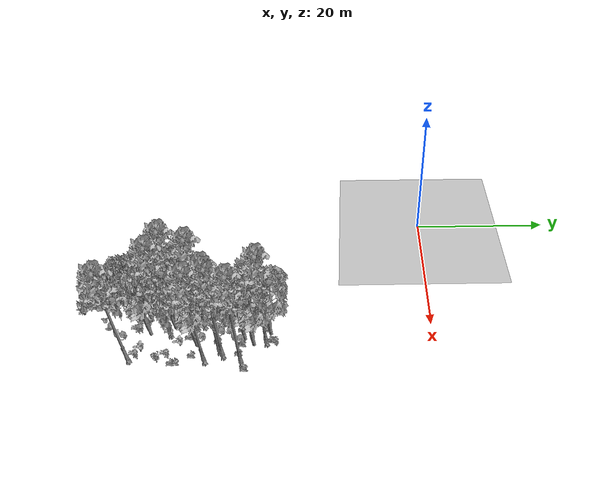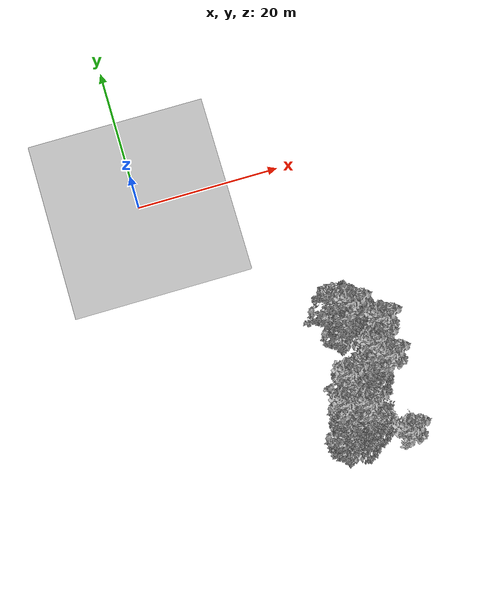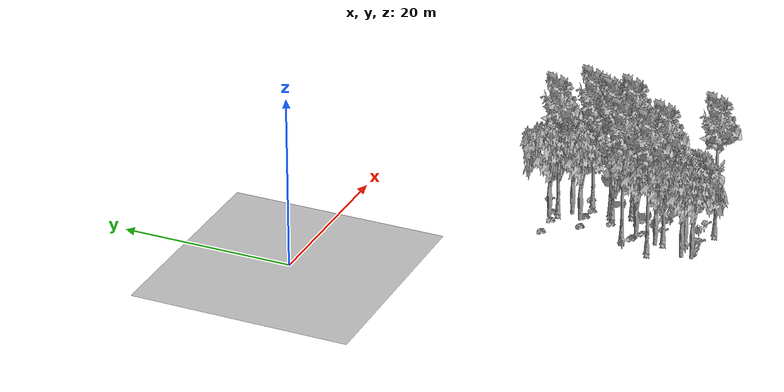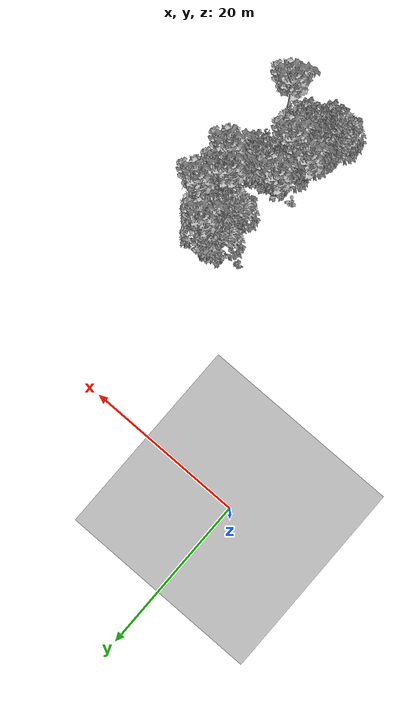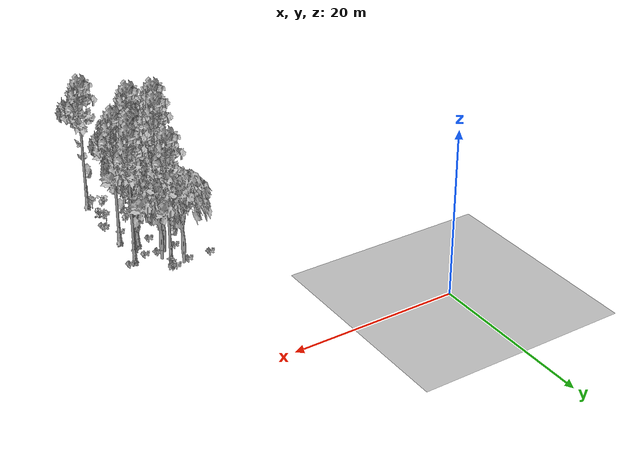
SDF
<sdf version="1.7">
 <world name="default">
  <model name="ground_plane">
   <static>1</static>
   <link name="link">
    <collision name="collision">
     <pose>-50 0 0 0 -0 0</pose>
     <geometry><plane><normal>0 0 1</normal><size>80 80</size></plane></geometry>
     <surface><contact><ode><min_depth>0.01</min_depth><max_vel>0</max_vel></ode></contact></surface>
    </collision>
    <visual name="grass">
     <cast_shadows>0</cast_shadows>
     <geometry>
      <mesh>
       <scale>0.46714285714285714 0.46714285714285714 0.1</scale>
       <uri>file://grass_plane/meshes/grass_plane.dae</uri>
      </mesh>
     </geometry>
    </visual>
   </link>
  </model>
  <model name="Tree 2">
   <static>1</static>
   <pose>25.895939131079473 -24.983478622586304 0 1.57079 -0 0</pose>
   <link name="link">
    <collision name="collision">
     <geometry><mesh><scale>3.5 5 3.5</scale><uri>model://tree_9/meshes/tree_9.obj</uri></mesh></geometry>
    </collision>
    <visual name="visual">
     <geometry><mesh><scale>3.5 5 3.5</scale><uri>model://tree_9/meshes/tree_9.obj</uri></mesh></geometry>
    </visual>
   </link>
  </model>
  <model name="Tree 17">
   <static>1</static>
   <pose>20.775173851776394 -32.00845553711174 0 1.57079 -0 0</pose>
   <link name="link">
    <collision name="collision">
     <geometry><mesh><scale>3.5 5 3.5</scale><uri>model://tree_2/meshes/tree_2.obj</uri></mesh></geometry>
    </collision>
    <visual name="visual">
     <geometry><mesh><scale>3.5 5 3.5</scale><uri>model://tree_2/meshes/tree_2.obj</uri></mesh></geometry>
    </visual>
   </link>
  </model>
  <model name="Tree 50">
   <static>1</static>
   <pose>20.03964299028147 -34.502203573731755 0 1.57079 -0 0</pose>
   <link name="link">
    <collision name="collision">
     <geometry><mesh><scale>3.5 5 3.5</scale><uri>model://tree_2/meshes/tree_2.obj</uri></mesh></geometry>
    </collision>
    <visual name="visual">
     <geometry><mesh><scale>3.5 5 3.5</scale><uri>model://tree_2/meshes/tree_2.obj</uri></mesh></geometry>
    </visual>
   </link>
  </model>
  <model name="Tree 171">
   <static>1</static>
   <pose>25.13889703880225 -39.59382594323795 0 1.57079 -0 0</pose>
   <link name="link">
    <collision name="collision">
     <geometry><mesh><scale>3.5 5 3.5</scale><uri>model://tree_9/meshes/tree_9.obj</uri></mesh></geometry>
    </collision>
    <visual name="visual">
     <geometry><mesh><scale>3.5 5 3.5</scale><uri>model://tree_9/meshes/tree_9.obj</uri></mesh></geometry>
    </visual>
   </link>
  </model>
  <model name="Tree 178">
   <static>1</static>
   <pose>18.662340691545758 -38.01272066539692 0 1.57079 -0 0</pose>
   <link name="link">
    <collision name="collision">
     <geometry><mesh><scale>3.5 5 3.5</scale><uri>model://tree_2/meshes/tree_2.obj</uri></mesh></geometry>
    </collision>
    <visual name="visual">
     <geometry><mesh><scale>3.5 5 3.5</scale><uri>model://tree_2/meshes/tree_2.obj</uri></mesh></geometry>
    </visual>
   </link>
  </model>
  <model name="Tree 180">
   <static>1</static>
   <pose>18.35312894545463 -34.17667152465096 0 1.57079 -0 0</pose>
   <link name="link">
    <collision name="collision">
     <geometry><mesh><scale>3.5 5 3.5</scale><uri>model://tree_9/meshes/tree_9.obj</uri></mesh></geometry>
    </collision>
    <visual name="visual">
     <geometry><mesh><scale>3.5 5 3.5</scale><uri>model://tree_9/meshes/tree_9.obj</uri></mesh></geometry>
    </visual>
   </link>
  </model>
  <model name="Tree 257">
   <static>1</static>
   <pose>18.790920092586134 -39.15629080911507 0 1.57079 -0 0</pose>
   <link name="link">
    <collision name="collision">
     <geometry><mesh><scale>3.5 5 3.5</scale><uri>model://tree_2/meshes/tree_2.obj</uri></mesh></geometry>
    </collision>
    <visual name="visual">
     <geometry><mesh><scale>3.5 5 3.5</scale><uri>model://tree_2/meshes/tree_2.obj</uri></mesh></geometry>
    </visual>
   </link>
  </model>
  <model name="Tree 292">
   <static>1</static>
   <pose>23.998572255017315 -28.04260436603011 0 1.57079 -0 0</pose>
   <link name="link">
    <collision name="collision">
     <geometry><mesh><scale>3.5 5 3.5</scale><uri>model://tree_9/meshes/tree_9.obj</uri></mesh></geometry>
    </collision>
    <visual name="visual">
     <geometry><mesh><scale>3.5 5 3.5</scale><uri>model://tree_9/meshes/tree_9.obj</uri></mesh></geometry>
    </visual>
   </link>
  </model>
  <model name="Tree 299">
   <static>1</static>
   <pose>22.74013191593503 -22.070173268263027 0 1.57079 -0 0</pose>
   <link name="link">
    <collision name="collision">
     <geometry><mesh><scale>3.5 5 3.5</scale><uri>model://tree_9/meshes/tree_9.obj</uri></mesh></geometry>
    </collision>
    <visual name="visual">
     <geometry><mesh><scale>3.5 5 3.5</scale><uri>model://tree_9/meshes/tree_9.obj</uri></mesh></geometry>
    </visual>
   </link>
  </model>
  <model name="Tree 339">
   <static>1</static>
   <pose>22.057036260310234 -24.949060111640335 0 1.57079 -0 0</pose>
   <link name="link">
    <collision name="collision">
     <geometry><mesh><scale>3.5 5 3.5</scale><uri>model://tree_2/meshes/tree_2.obj</uri></mesh></geometry>
    </collision>
    <visual name="visual">
     <geometry><mesh><scale>3.5 5 3.5</scale><uri>model://tree_2/meshes/tree_2.obj</uri></mesh></geometry>
    </visual>
   </link>
  </model>
  <model name="Tree 405">
   <static>1</static>
   <pose>23.012052951919586 -23.66869611775222 0 1.57079 -0 0</pose>
   <link name="link">
    <collision name="collision">
     <geometry><mesh><scale>3.5 5 3.5</scale><uri>model://tree_2/meshes/tree_2.obj</uri></mesh></geometry>
    </collision>
    <visual name="visual">
     <geometry><mesh><scale>3.5 5 3.5</scale><uri>model://tree_2/meshes/tree_2.obj</uri></mesh></geometry>
    </visual>
   </link>
  </model>
  <model name="Tree 513">
   <static>1</static>
   <pose>21.13106422165309 -35.045623035963594 0 1.57079 -0 0</pose>
   <link name="link">
    <collision name="collision">
     <geometry><mesh><scale>3.5 5 3.5</scale><uri>model://tree_9/meshes/tree_9.obj</uri></mesh></geometry>
    </collision>
    <visual name="visual">
     <geometry><mesh><scale>3.5 5 3.5</scale><uri>model://tree_9/meshes/tree_9.obj</uri></mesh></geometry>
    </visual>
   </link>
  </model>
  <model name="Tree 530">
   <static>1</static>
   <pose>21.008466601940142 -37.60680440375917 0 1.57079 -0 0</pose>
   <link name="link">
    <collision name="collision">
     <geometry><mesh><scale>3.5 5 3.5</scale><uri>model://tree_2/meshes/tree_2.obj</uri></mesh></geometry>
    </collision>
    <visual name="visual">
     <geometry><mesh><scale>3.5 5 3.5</scale><uri>model://tree_2/meshes/tree_2.obj</uri></mesh></geometry>
    </visual>
   </link>
  </model>
  <model name="Tree 561">
   <static>1</static>
   <pose>24.702244432927095 -27.509720786546545 0 1.57079 -0 0</pose>
   <link name="link">
    <collision name="collision">
     <geometry><mesh><scale>3.5 5 3.5</scale><uri>model://tree_9/meshes/tree_9.obj</uri></mesh></geometry>
    </collision>
    <visual name="visual">
     <geometry><mesh><scale>3.5 5 3.5</scale><uri>model://tree_9/meshes/tree_9.obj</uri></mesh></geometry>
    </visual>
   </link>
  </model>
  <model name="Tree 597">
   <static>1</static>
   <pose>23.01410788185936 -31.121638936386624 0 1.57079 -0 0</pose>
   <link name="link">
    <collision name="collision">
     <geometry><mesh><scale>3.5 5 3.5</scale><uri>model://tree_2/meshes/tree_2.obj</uri></mesh></geometry>
    </collision>
    <visual name="visual">
     <geometry><mesh><scale>3.5 5 3.5</scale><uri>model://tree_2/meshes/tree_2.obj</uri></mesh></geometry>
    </visual>
   </link>
  </model>
  <model name="Tree 610">
   <static>1</static>
   <pose>25.508397257762624 -29.77891168713576 0 1.57079 -0 0</pose>
   <link name="link">
    <collision name="collision">
     <geometry><mesh><scale>3.5 5 3.5</scale><uri>model://tree_9/meshes/tree_9.obj</uri></mesh></geometry>
    </collision>
    <visual name="visual">
     <geometry><mesh><scale>3.5 5 3.5</scale><uri>model://tree_9/meshes/tree_9.obj</uri></mesh></geometry>
    </visual>
   </link>
  </model>
  <model name="Tree 615">
   <static>1</static>
   <pose>19.790668051672327 -30.704850049520573 0 1.57079 -0 0</pose>
   <link name="link">
    <collision name="collision">
     <geometry><mesh><scale>3.5 5 3.5</scale><uri>model://tree_9/meshes/tree_9.obj</uri></mesh></geometry>
    </collision>
    <visual name="visual">
     <geometry><mesh><scale>3.5 5 3.5</scale><uri>model://tree_9/meshes/tree_9.obj</uri></mesh></geometry>
    </visual>
   </link>
  </model>
  <model name="Tree 630">
   <static>1</static>
   <pose>21.278271528977193 -21.598336239275497 0 1.57079 -0 0</pose>
   <link name="link">
    <collision name="collision">
     <geometry><mesh><scale>3.5 5 3.5</scale><uri>model://tree_2/meshes/tree_2.obj</uri></mesh></geometry>
    </collision>
    <visual name="visual">
     <geometry><mesh><scale>3.5 5 3.5</scale><uri>model://tree_2/meshes/tree_2.obj</uri></mesh></geometry>
    </visual>
   </link>
  </model>
  <model name="Bush 8">
   <static>1</static>
   <pose>20.0858802849381 -31.703593539400785 0 1.57079 -0 0</pose>
   <link name="link">
    <collision name="collision">
     <geometry><mesh><scale>2 2 2</scale><uri>model://bush_2/meshes/bush_2.obj</uri></mesh></geometry>
     <surface><contact><collide_without_contact>false</collide_without_contact></contact></surface>
    </collision>
    <visual name="visual">
     <geometry><mesh><scale>2 2 2</scale><uri>model://bush_2/meshes/bush_2.obj</uri></mesh></geometry>
    </visual>
   </link>
  </model>
  <model name="Bush 13">
   <static>1</static>
   <pose>25.21767714530199 -35.915971149658446 0 1.57079 -0 0</pose>
   <link name="link">
    <collision name="collision">
     <geometry><mesh><scale>2 2 2</scale><uri>model://bush_4/meshes/bush_4.obj</uri></mesh></geometry>
     <surface><contact><collide_without_contact>false</collide_without_contact></contact></surface>
    </collision>
    <visual name="visual">
     <geometry><mesh><scale>2 2 2</scale><uri>model://bush_4/meshes/bush_4.obj</uri></mesh></geometry>
    </visual>
   </link>
  </model>
  <model name="Bush 17">
   <static>1</static>
   <pose>19.8039147172424 -38.10325596428879 0 1.57079 -0 0</pose>
   <link name="link">
    <collision name="collision">
     <geometry><mesh><scale>2 2 2</scale><uri>model://bush_0/meshes/bush_0.obj</uri></mesh></geometry>
     <surface><contact><collide_without_contact>false</collide_without_contact></contact></surface>
    </collision>
    <visual name="visual">
     <geometry><mesh><scale>2 2 2</scale><uri>model://bush_0/meshes/bush_0.obj</uri></mesh></geometry>
    </visual>
   </link>
  </model>
  <model name="Bush 24">
   <static>1</static>
   <pose>22.908264213237935 -25.243392288546147 0 1.57079 -0 0</pose>
   <link name="link">
    <collision name="collision">
     <geometry><mesh><scale>2 2 2</scale><uri>model://bush_2/meshes/bush_2.obj</uri></mesh></geometry>
     <surface><contact><collide_without_contact>false</collide_without_contact></contact></surface>
    </collision>
    <visual name="visual">
     <geometry><mesh><scale>2 2 2</scale><uri>model://bush_2/meshes/bush_2.obj</uri></mesh></geometry>
    </visual>
   </link>
  </model>
  <model name="Bush 59">
   <static>1</static>
   <pose>23.81913126826376 -38.235936609016285 0 1.57079 -0 0</pose>
   <link name="link">
    <collision name="collision">
     <geometry><mesh><scale>2 2 2</scale><uri>model://bush_0/meshes/bush_0.obj</uri></mesh></geometry>
     <surface><contact><collide_without_contact>false</collide_without_contact></contact></surface>
    </collision>
    <visual name="visual">
     <geometry><mesh><scale>2 2 2</scale><uri>model://bush_0/meshes/bush_0.obj</uri></mesh></geometry>
    </visual>
   </link>
  </model>
  <model name="Bush 90">
   <static>1</static>
   <pose>20.52441072869157 -22.089870436209296 0 1.57079 -0 0</pose>
   <link name="link">
    <collision name="collision">
     <geometry><mesh><scale>2 2 2</scale><uri>model://bush_2/meshes/bush_2.obj</uri></mesh></geometry>
     <surface><contact><collide_without_contact>false</collide_without_contact></contact></surface>
    </collision>
    <visual name="visual">
     <geometry><mesh><scale>2 2 2</scale><uri>model://bush_2/meshes/bush_2.obj</uri></mesh></geometry>
    </visual>
   </link>
  </model>
  <model name="Bush 91">
   <static>1</static>
   <pose>20.486843014139495 -25.589700203820076 0 1.57079 -0 0</pose>
   <link name="link">
    <collision name="collision">
     <geometry><mesh><scale>2 2 2</scale><uri>model://bush_2/meshes/bush_2.obj</uri></mesh></geometry>
     <surface><contact><collide_without_contact>false</collide_without_contact></contact></surface>
    </collision>
    <visual name="visual">
     <geometry><mesh><scale>2 2 2</scale><uri>model://bush_2/meshes/bush_2.obj</uri></mesh></geometry>
    </visual>
   </link>
  </model>
  <model name="Bush 96">
   <static>1</static>
   <pose>20.936201558449618 -39.176584407279414 0 1.57079 -0 0</pose>
   <link name="link">
    <collision name="collision">
     <geometry><mesh><scale>2 2 2</scale><uri>model://bush_5/meshes/bush_5.obj</uri></mesh></geometry>
     <surface><contact><collide_without_contact>false</collide_without_contact></contact></surface>
    </collision>
    <visual name="visual">
     <geometry><mesh><scale>2 2 2</scale><uri>model://bush_5/meshes/bush_5.obj</uri></mesh></geometry>
    </visual>
   </link>
  </model>
  <model name="Bush 107">
   <static>1</static>
   <pose>17.726560177473033 -22.091819347771047 0 1.57079 -0 0</pose>
   <link name="link">
    <collision name="collision">
     <geometry><mesh><scale>2 2 2</scale><uri>model://bush_2/meshes/bush_2.obj</uri></mesh></geometry>
     <surface><contact><collide_without_contact>false</collide_without_contact></contact></surface>
    </collision>
    <visual name="visual">
     <geometry><mesh><scale>2 2 2</scale><uri>model://bush_2/meshes/bush_2.obj</uri></mesh></geometry>
    </visual>
   </link>
  </model>
  <model name="Bush 167">
   <static>1</static>
   <pose>19.313934427192933 -39.353313875258834 0 1.57079 -0 0</pose>
   <link name="link">
    <collision name="collision">
     <geometry><mesh><scale>2 2 2</scale><uri>model://bush_4/meshes/bush_4.obj</uri></mesh></geometry>
     <surface><contact><collide_without_contact>false</collide_without_contact></contact></surface>
    </collision>
    <visual name="visual">
     <geometry><mesh><scale>2 2 2</scale><uri>model://bush_4/meshes/bush_4.obj</uri></mesh></geometry>
    </visual>
   </link>
  </model>
  <model name="Bush 197">
   <static>1</static>
   <pose>17.877412882977517 -31.47244754331968 0 1.57079 -0 0</pose>
   <link name="link">
    <collision name="collision">
     <geometry><mesh><scale>2 2 2</scale><uri>model://bush_0/meshes/bush_0.obj</uri></mesh></geometry>
     <surface><contact><collide_without_contact>false</collide_without_contact></contact></surface>
    </collision>
    <visual name="visual">
     <geometry><mesh><scale>2 2 2</scale><uri>model://bush_0/meshes/bush_0.obj</uri></mesh></geometry>
    </visual>
   </link>
  </model>
  <model name="Bush 219">
   <static>1</static>
   <pose>24.336341908855523 -25.541165949659643 0 1.57079 -0 0</pose>
   <link name="link">
    <collision name="collision">
     <geometry><mesh><scale>2 2 2</scale><uri>model://bush_2/meshes/bush_2.obj</uri></mesh></geometry>
     <surface><contact><collide_without_contact>false</collide_without_contact></contact></surface>
    </collision>
    <visual name="visual">
     <geometry><mesh><scale>2 2 2</scale><uri>model://bush_2/meshes/bush_2.obj</uri></mesh></geometry>
    </visual>
   </link>
  </model>
  <model name="Bush 289">
   <static>1</static>
   <pose>20.38519190616376 -31.725952836377598 0 1.57079 -0 0</pose>
   <link name="link">
    <collision name="collision">
     <geometry><mesh><scale>2 2 2</scale><uri>model://bush_2/meshes/bush_2.obj</uri></mesh></geometry>
     <surface><contact><collide_without_contact>false</collide_without_contact></contact></surface>
    </collision>
    <visual name="visual">
     <geometry><mesh><scale>2 2 2</scale><uri>model://bush_2/meshes/bush_2.obj</uri></mesh></geometry>
    </visual>
   </link>
  </model>
  <model name="Bush 293">
   <static>1</static>
   <pose>25.640405318151778 -33.49874153122015 0 1.57079 -0 0</pose>
   <link name="link">
    <collision name="collision">
     <geometry><mesh><scale>2 2 2</scale><uri>model://bush_2/meshes/bush_2.obj</uri></mesh></geometry>
     <surface><contact><collide_without_contact>false</collide_without_contact></contact></surface>
    </collision>
    <visual name="visual">
     <geometry><mesh><scale>2 2 2</scale><uri>model://bush_2/meshes/bush_2.obj</uri></mesh></geometry>
    </visual>
   </link>
  </model>
  <model name="Bush 373">
   <static>1</static>
   <pose>24.54131631897023 -31.610768297818133 0 1.57079 -0 0</pose>
   <link name="link">
    <collision name="collision">
     <geometry><mesh><scale>2 2 2</scale><uri>model://bush_2/meshes/bush_2.obj</uri></mesh></geometry>
     <surface><contact><collide_without_contact>false</collide_without_contact></contact></surface>
    </collision>
    <visual name="visual">
     <geometry><mesh><scale>2 2 2</scale><uri>model://bush_2/meshes/bush_2.obj</uri></mesh></geometry>
    </visual>
   </link>
  </model>
  <model name="Bush 382">
   <static>1</static>
   <pose>25.6995312810931 -34.072572174842364 0 1.57079 -0 0</pose>
   <link name="link">
    <collision name="collision">
     <geometry><mesh><scale>2 2 2</scale><uri>model://bush_2/meshes/bush_2.obj</uri></mesh></geometry>
     <surface><contact><collide_without_contact>false</collide_without_contact></contact></surface>
    </collision>
    <visual name="visual">
     <geometry><mesh><scale>2 2 2</scale><uri>model://bush_2/meshes/bush_2.obj</uri></mesh></geometry>
    </visual>
   </link>
  </model>
  <model name="Bush 386">
   <static>1</static>
   <pose>24.986088702339906 -38.457654457736474 0 1.57079 -0 0</pose>
   <link name="link">
    <collision name="collision">
     <geometry><mesh><scale>2 2 2</scale><uri>model://bush_5/meshes/bush_5.obj</uri></mesh></geometry>
     <surface><contact><collide_without_contact>false</collide_without_contact></contact></surface>
    </collision>
    <visual name="visual">
     <geometry><mesh><scale>2 2 2</scale><uri>model://bush_5/meshes/bush_5.obj</uri></mesh></geometry>
    </visual>
   </link>
  </model>
  <model name="Bush 391">
   <static>1</static>
   <pose>25.022950789917793 -34.47447369851613 0 1.57079 -0 0</pose>
   <link name="link">
    <collision name="collision">
     <geometry><mesh><scale>2 2 2</scale><uri>model://bush_5/meshes/bush_5.obj</uri></mesh></geometry>
     <surface><contact><collide_without_contact>false</collide_without_contact></contact></surface>
    </collision>
    <visual name="visual">
     <geometry><mesh><scale>2 2 2</scale><uri>model://bush_5/meshes/bush_5.obj</uri></mesh></geometry>
    </visual>
   </link>
  </model>
  <model name="Bush 407">
   <static>1</static>
   <pose>22.796797747446433 -25.328063595437555 0 1.57079 -0 0</pose>
   <link name="link">
    <collision name="collision">
     <geometry><mesh><scale>2 2 2</scale><uri>model://bush_2/meshes/bush_2.obj</uri></mesh></geometry>
     <surface><contact><collide_without_contact>false</collide_without_contact></contact></surface>
    </collision>
    <visual name="visual">
     <geometry><mesh><scale>2 2 2</scale><uri>model://bush_2/meshes/bush_2.obj</uri></mesh></geometry>
    </visual>
   </link>
  </model>
  <model name="Bush 448">
   <static>1</static>
   <pose>23.065187590755144 -33.31340244561326 0 1.57079 -0 0</pose>
   <link name="link">
    <collision name="collision">
     <geometry><mesh><scale>2 2 2</scale><uri>model://bush_0/meshes/bush_0.obj</uri></mesh></geometry>
     <surface><contact><collide_without_contact>false</collide_without_contact></contact></surface>
    </collision>
    <visual name="visual">
     <geometry><mesh><scale>2 2 2</scale><uri>model://bush_0/meshes/bush_0.obj</uri></mesh></geometry>
    </visual>
   </link>
  </model>
  <model name="Bush 461">
   <static>1</static>
   <pose>26.716791892209685 -24.54483672209811 0 1.57079 -0 0</pose>
   <link name="link">
    <collision name="collision">
     <geometry><mesh><scale>2 2 2</scale><uri>model://bush_2/meshes/bush_2.obj</uri></mesh></geometry>
     <surface><contact><collide_without_contact>false</collide_without_contact></contact></surface>
    </collision>
    <visual name="visual">
     <geometry><mesh><scale>2 2 2</scale><uri>model://bush_2/meshes/bush_2.obj</uri></mesh></geometry>
    </visual>
   </link>
  </model>
  <model name="Bush 544">
   <static>1</static>
   <pose>23.296331837336027 -20.66832365754206 0 1.57079 -0 0</pose>
   <link name="link">
    <collision name="collision">
     <geometry><mesh><scale>2 2 2</scale><uri>model://bush_5/meshes/bush_5.obj</uri></mesh></geometry>
     <surface><contact><collide_without_contact>false</collide_without_contact></contact></surface>
    </collision>
    <visual name="visual">
     <geometry><mesh><scale>2 2 2</scale><uri>model://bush_5/meshes/bush_5.obj</uri></mesh></geometry>
    </visual>
   </link>
  </model>
  <model name="Bush 550">
   <static>1</static>
   <pose>22.36474886861764 -28.512535054212922 0 1.57079 -0 0</pose>
   <link name="link">
    <collision name="collision">
     <geometry><mesh><scale>2 2 2</scale><uri>model://bush_2/meshes/bush_2.obj</uri></mesh></geometry>
     <surface><contact><collide_without_contact>false</collide_without_contact></contact></surface>
    </collision>
    <visual name="visual">
     <geometry><mesh><scale>2 2 2</scale><uri>model://bush_2/meshes/bush_2.obj</uri></mesh></geometry>
    </visual>
   </link>
  </model>
  <model name="Bush 589">
   <static>1</static>
   <pose>20.790895079633046 -38.837819498386864 0 1.57079 -0 0</pose>
   <link name="link">
    <collision name="collision">
     <geometry><mesh><scale>2 2 2</scale><uri>model://bush_5/meshes/bush_5.obj</uri></mesh></geometry>
     <surface><contact><collide_without_contact>false</collide_without_contact></contact></surface>
    </collision>
    <visual name="visual">
     <geometry><mesh><scale>2 2 2</scale><uri>model://bush_5/meshes/bush_5.obj</uri></mesh></geometry>
    </visual>
   </link>
  </model>
  <model name="Bush 590">
   <static>1</static>
   <pose>22.336768376562226 -21.521837158244203 0 1.57079 -0 0</pose>
   <link name="link">
    <collision name="collision">
     <geometry><mesh><scale>2 2 2</scale><uri>model://bush_2/meshes/bush_2.obj</uri></mesh></geometry>
     <surface><contact><collide_without_contact>false</collide_without_contact></contact></surface>
    </collision>
    <visual name="visual">
     <geometry><mesh><scale>2 2 2</scale><uri>model://bush_2/meshes/bush_2.obj</uri></mesh></geometry>
    </visual>
   </link>
  </model>
  <model name="Bush 591">
   <static>1</static>
   <pose>21.62712719780845 -32.47615085990775 0 1.57079 -0 0</pose>
   <link name="link">
    <collision name="collision">
     <geometry><mesh><scale>2 2 2</scale><uri>model://bush_2/meshes/bush_2.obj</uri></mesh></geometry>
     <surface><contact><collide_without_contact>false</collide_without_contact></contact></surface>
    </collision>
    <visual name="visual">
     <geometry><mesh><scale>2 2 2</scale><uri>model://bush_2/meshes/bush_2.obj</uri></mesh></geometry>
    </visual>
   </link>
  </model>
  <model name="Bush 625">
   <static>1</static>
   <pose>21.580413729000725 -34.69620251298526 0 1.57079 -0 0</pose>
   <link name="link">
    <collision name="collision">
     <geometry><mesh><scale>2 2 2</scale><uri>model://bush_5/meshes/bush_5.obj</uri></mesh></geometry>
     <surface><contact><collide_without_contact>false</collide_without_contact></contact></surface>
    </collision>
    <visual name="visual">
     <geometry><mesh><scale>2 2 2</scale><uri>model://bush_5/meshes/bush_5.obj</uri></mesh></geometry>
    </visual>
   </link>
  </model>
 </world>
</sdf>
